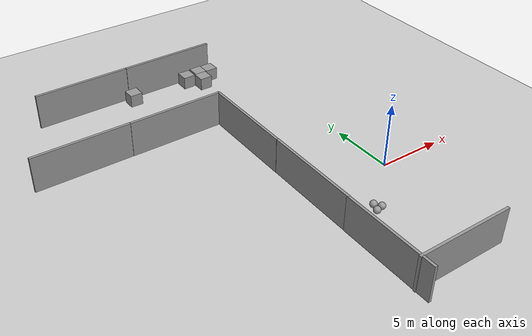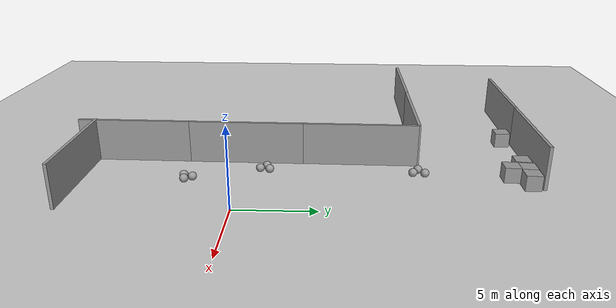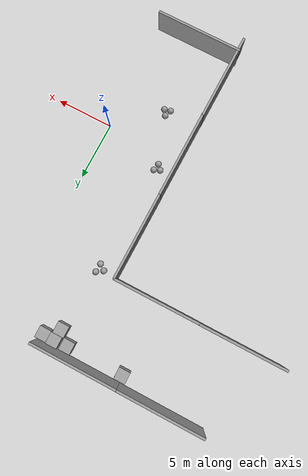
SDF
<sdf version="1.7">
 <world name="default">
  <model name="ground_plane">
   <static>1</static>
   <link name="link">
    <collision name="collision">
     <geometry><plane><normal>0 0 1</normal><size>100 100</size></plane></geometry>
     <surface><friction><ode><mu>100</mu><mu2>50</mu2></ode></friction></surface>
    </collision>
    <visual name="visual">
     <cast_shadows>0</cast_shadows>
     <geometry><plane><normal>0 0 1</normal><size>100 100</size></plane></geometry>
     <material>
      <script><uri>file://media/materials/scripts/gazebo.material</uri><name>Gazebo/Grey</name></script>
     </material>
    </visual>
   </link>
  </model>
  <model name="grey_wall">
   <static>1</static>
   <link name="link">
    <pose>0 0 1.4 0 -0 0</pose>
    <collision name="collision"><geometry><box><size>7.5 0.2 2.8</size></box></geometry></collision>
    <visual name="visual">
     <cast_shadows>0</cast_shadows>
     <geometry><box><size>7.5 0.2 2.8</size></box></geometry>
     <material>
      <script>
       <uri>model://grey_wall/materials/scripts</uri>
       <uri>model://grey_wall/materials/textures</uri>
       <name>vrc/grey_wall</name>
      </script>
     </material>
    </visual>
   </link>
   <pose>-6.78669 0.011997 0 0 0 -1.57834</pose>
  </model>
  <model name="grey_wall_clone_0">
   <static>1</static>
   <link name="link">
    <pose>0 0 1.4 0 -0 0</pose>
    <collision name="collision"><geometry><box><size>7.5 0.2 2.8</size></box></geometry></collision>
    <visual name="visual">
     <cast_shadows>0</cast_shadows>
     <geometry><box><size>7.5 0.2 2.8</size></box></geometry>
     <material>
      <script>
       <uri>model://grey_wall/materials/scripts</uri>
       <uri>model://grey_wall/materials/textures</uri>
       <name>vrc/grey_wall</name>
      </script>
     </material>
    </visual>
   </link>
   <pose>-6.74097 7.49673 0 0 0 -1.57834</pose>
  </model>
  <model name="grey_wall_clone_3">
   <static>1</static>
   <link name="link">
    <pose>0 0 1.4 0 -0 0</pose>
    <collision name="collision"><geometry><box><size>7.5 0.2 2.8</size></box></geometry></collision>
    <visual name="visual">
     <cast_shadows>0</cast_shadows>
     <geometry><box><size>7.5 0.2 2.8</size></box></geometry>
     <material>
      <script>
       <uri>model://grey_wall/materials/scripts</uri>
       <uri>model://grey_wall/materials/textures</uri>
       <name>vrc/grey_wall</name>
      </script>
     </material>
    </visual>
   </link>
   <pose>-10.4124 11.2518 -0 0 -0 0.002725</pose>
  </model>
  <model name="grey_wall_clone_3_clone_0">
   <static>1</static>
   <link name="link">
    <pose>0 0 1.4 0 -0 0</pose>
    <collision name="collision"><geometry><box><size>7.5 0.2 2.8</size></box></geometry></collision>
    <visual name="visual">
     <cast_shadows>0</cast_shadows>
     <geometry><box><size>7.5 0.2 2.8</size></box></geometry>
     <material>
      <script>
       <uri>model://grey_wall/materials/scripts</uri>
       <uri>model://grey_wall/materials/textures</uri>
       <name>vrc/grey_wall</name>
      </script>
     </material>
    </visual>
   </link>
   <pose>-7.05584 18.4768 -0 0 -0 0.002725</pose>
  </model>
  <model name="grey_wall_clone_3_clone_1">
   <static>1</static>
   <link name="link">
    <pose>0 0 1.4 0 -0 0</pose>
    <collision name="collision"><geometry><box><size>7.5 0.2 2.8</size></box></geometry></collision>
    <visual name="visual">
     <cast_shadows>0</cast_shadows>
     <geometry><box><size>7.5 0.2 2.8</size></box></geometry>
     <material>
      <script>
       <uri>model://grey_wall/materials/scripts</uri>
       <uri>model://grey_wall/materials/textures</uri>
       <name>vrc/grey_wall</name>
      </script>
     </material>
    </visual>
   </link>
   <pose>-14.5607 18.4686 -0 0 -0 0.002725</pose>
  </model>
  <model name="grey_wall_clone_3_clone_2">
   <static>1</static>
   <link name="link">
    <pose>0 0 1.4 0 -0 0</pose>
    <collision name="collision"><geometry><box><size>7.5 0.2 2.8</size></box></geometry></collision>
    <visual name="visual">
     <cast_shadows>0</cast_shadows>
     <geometry><box><size>7.5 0.2 2.8</size></box></geometry>
     <material>
      <script>
       <uri>model://grey_wall/materials/scripts</uri>
       <uri>model://grey_wall/materials/textures</uri>
       <name>vrc/grey_wall</name>
      </script>
     </material>
    </visual>
   </link>
   <pose>-17.8841 11.2437 -0 0 -0 0.002725</pose>
  </model>
  <model name="grey_wall_clone_3_clone_3">
   <static>1</static>
   <link name="link">
    <pose>0 0 1.4 0 -0 0</pose>
    <collision name="collision"><geometry><box><size>7.5 0.2 2.8</size></box></geometry></collision>
    <visual name="visual">
     <cast_shadows>0</cast_shadows>
     <geometry><box><size>7.5 0.2 2.8</size></box></geometry>
     <material>
      <script>
       <uri>model://grey_wall/materials/scripts</uri>
       <uri>model://grey_wall/materials/textures</uri>
       <name>vrc/grey_wall</name>
      </script>
     </material>
    </visual>
   </link>
   <pose>-3.29289 -9.9996 -0 0 -0 0.002725</pose>
  </model>
  <model name="grey_wall_clone_clone_0">
   <static>1</static>
   <link name="link">
    <pose>0 0 1.4 0 -0 0</pose>
    <collision name="collision"><geometry><box><size>7.5 0.2 2.8</size></box></geometry></collision>
    <visual name="visual">
     <cast_shadows>0</cast_shadows>
     <geometry><box><size>7.5 0.2 2.8</size></box></geometry>
     <material>
      <script>
       <uri>model://grey_wall/materials/scripts</uri>
       <uri>model://grey_wall/materials/textures</uri>
       <name>vrc/grey_wall</name>
      </script>
     </material>
    </visual>
   </link>
   <pose>-6.85771 -7.37169 0 0 0 -1.57834</pose>
  </model>
  <model name="unit_box_0">
   <pose>-4.64812 17.7846 0.499995 -1e-05 -0 -0.001318</pose>
   <link name="link">
    <inertial>
     <mass>1</mass>
     <inertia>
      <ixx>0.166667</ixx>
      <ixy>0</ixy>
      <ixz>0</ixz>
      <iyy>0.166667</iyy>
      <iyz>0</iyz>
      <izz>0.166667</izz>
     </inertia>
    </inertial>
    <collision name="collision"><geometry><box><size>1 1 1</size></box></geometry></collision>
    <visual name="visual">
     <geometry><box><size>1 1 1</size></box></geometry>
     <material>
      <script><name>Gazebo/Grey</name><uri>file://media/materials/scripts/gazebo.material</uri></script>
     </material>
    </visual>
   </link>
  </model>
  <model name="unit_box_0_clone">
   <pose>-3.64788 17.7466 0.499995 0 1e-05 -0.000769</pose>
   <link name="link">
    <inertial>
     <mass>1</mass>
     <inertia>
      <ixx>0.166667</ixx>
      <ixy>0</ixy>
      <ixz>0</ixz>
      <iyy>0.166667</iyy>
      <iyz>0</iyz>
      <izz>0.166667</izz>
     </inertia>
    </inertial>
    <collision name="collision"><geometry><box><size>1 1 1</size></box></geometry></collision>
    <visual name="visual">
     <geometry><box><size>1 1 1</size></box></geometry>
     <material>
      <script><name>Gazebo/Grey</name><uri>file://media/materials/scripts/gazebo.material</uri></script>
     </material>
    </visual>
   </link>
  </model>
  <model name="unit_box_0_clone_0">
   <pose>-4.75039 16.7845 0.499995 -0 1e-05 -0.001719</pose>
   <link name="link">
    <inertial>
     <mass>1</mass>
     <inertia>
      <ixx>0.166667</ixx>
      <ixy>0</ixy>
      <ixz>0</ixz>
      <iyy>0.166667</iyy>
      <iyz>0</iyz>
      <izz>0.166667</izz>
     </inertia>
    </inertial>
    <collision name="collision"><geometry><box><size>1 1 1</size></box></geometry></collision>
    <visual name="visual">
     <geometry><box><size>1 1 1</size></box></geometry>
     <material>
      <script><name>Gazebo/Grey</name><uri>file://media/materials/scripts/gazebo.material</uri></script>
     </material>
    </visual>
   </link>
  </model>
  <model name="unit_box_0_clone_1">
   <pose>-5.78902 17.7108 0.499995 -1e-05 -0 -0</pose>
   <link name="link">
    <inertial>
     <mass>1</mass>
     <inertia>
      <ixx>0.166667</ixx>
      <ixy>0</ixy>
      <ixz>0</ixz>
      <iyy>0.166667</iyy>
      <iyz>0</iyz>
      <izz>0.166667</izz>
     </inertia>
    </inertial>
    <collision name="collision"><geometry><box><size>1 1 1</size></box></geometry></collision>
    <visual name="visual">
     <geometry><box><size>1 1 1</size></box></geometry>
     <material>
      <script><name>Gazebo/Grey</name><uri>file://media/materials/scripts/gazebo.material</uri></script>
     </material>
    </visual>
   </link>
  </model>
  <model name="unit_box_0_clone_2">
   <pose>-10.7277 17.6537 0.499995 -1e-05 -0 -0</pose>
   <link name="link">
    <inertial>
     <mass>1</mass>
     <inertia>
      <ixx>0.166667</ixx>
      <ixy>0</ixy>
      <ixz>0</ixz>
      <iyy>0.166667</iyy>
      <iyz>0</iyz>
      <izz>0.166667</izz>
     </inertia>
    </inertial>
    <collision name="collision"><geometry><box><size>1 1 1</size></box></geometry></collision>
    <visual name="visual">
     <geometry><box><size>1 1 1</size></box></geometry>
     <material>
      <script><name>Gazebo/Grey</name><uri>file://media/materials/scripts/gazebo.material</uri></script>
     </material>
    </visual>
   </link>
  </model>
  <model name="unit_sphere_clone_1">
   <pose>-5.26566 1.09066 0.271614 0.016809 0.009105 0.012954</pose>
   <link name="link">
    <inertial>
     <mass>1</mass>
     <inertia><ixx>0.1</ixx><ixy>0</ixy><ixz>0</ixz><iyy>0.1</iyy><iyz>0</iyz><izz>0.1</izz></inertia>
    </inertial>
    <collision name="collision"><geometry><sphere><radius>0.271614</radius></sphere></geometry></collision>
    <visual name="visual">
     <geometry><sphere><radius>0.271614</radius></sphere></geometry>
     <material>
      <script><name>Gazebo/Grey</name><uri>file://media/materials/scripts/gazebo.material</uri></script>
     </material>
    </visual>
   </link>
  </model>
  <model name="unit_sphere_clone_2">
   <pose>-5.14134 1.70576 0.271614 -0.012056 0.014828 -0.01643</pose>
   <link name="link">
    <inertial>
     <mass>1</mass>
     <inertia><ixx>0.1</ixx><ixy>0</ixy><ixz>0</ixz><iyy>0.1</iyy><iyz>0</iyz><izz>0.1</izz></inertia>
    </inertial>
    <collision name="collision"><geometry><sphere><radius>0.271614</radius></sphere></geometry></collision>
    <visual name="visual">
     <geometry><sphere><radius>0.271614</radius></sphere></geometry>
     <material>
      <script><name>Gazebo/Grey</name><uri>file://media/materials/scripts/gazebo.material</uri></script>
     </material>
    </visual>
   </link>
  </model>
  <model name="unit_sphere_clone_3">
   <pose>-5.65013 1.48844 0.271614 -0.004272 -0.021995 -0.003409</pose>
   <link name="link">
    <inertial>
     <mass>1</mass>
     <inertia><ixx>0.1</ixx><ixy>0</ixy><ixz>0</ixz><iyy>0.1</iyy><iyz>0</iyz><izz>0.1</izz></inertia>
    </inertial>
    <collision name="collision"><geometry><sphere><radius>0.271614</radius></sphere></geometry></collision>
    <visual name="visual">
     <geometry><sphere><radius>0.271614</radius></sphere></geometry>
     <material>
      <script><name>Gazebo/Grey</name><uri>file://media/materials/scripts/gazebo.material</uri></script>
     </material>
    </visual>
   </link>
  </model>
  <model name="unit_sphere_clone_4">
   <pose>-3.47532 -3.44488 0.271614 0.021515 0.029464 -0.005341</pose>
   <link name="link">
    <inertial>
     <mass>1</mass>
     <inertia><ixx>0.1</ixx><ixy>0</ixy><ixz>0</ixz><iyy>0.1</iyy><iyz>0</iyz><izz>0.1</izz></inertia>
    </inertial>
    <collision name="collision"><geometry><sphere><radius>0.271614</radius></sphere></geometry></collision>
    <visual name="visual">
     <geometry><sphere><radius>0.271614</radius></sphere></geometry>
     <material>
      <script><name>Gazebo/Grey</name><uri>file://media/materials/scripts/gazebo.material</uri></script>
     </material>
    </visual>
   </link>
  </model>
  <model name="unit_sphere_clone_5">
   <pose>-3.79707 -2.98069 0.271614 -0.027595 -0.01828 0.000247</pose>
   <link name="link">
    <inertial>
     <mass>1</mass>
     <inertia><ixx>0.1</ixx><ixy>0</ixy><ixz>0</ixz><iyy>0.1</iyy><iyz>0</iyz><izz>0.1</izz></inertia>
    </inertial>
    <collision name="collision"><geometry><sphere><radius>0.271614</radius></sphere></geometry></collision>
    <visual name="visual">
     <geometry><sphere><radius>0.271614</radius></sphere></geometry>
     <material>
      <script><name>Gazebo/Grey</name><uri>file://media/materials/scripts/gazebo.material</uri></script>
     </material>
    </visual>
   </link>
  </model>
  <model name="unit_sphere_clone_6">
   <pose>-4.01368 -3.57225 0.271614 0.007571 -0.01701 -0.005624</pose>
   <link name="link">
    <inertial>
     <mass>1</mass>
     <inertia><ixx>0.1</ixx><ixy>0</ixy><ixz>0</ixz><iyy>0.1</iyy><iyz>0</iyz><izz>0.1</izz></inertia>
    </inertial>
    <collision name="collision"><geometry><sphere><radius>0.271614</radius></sphere></geometry></collision>
    <visual name="visual">
     <geometry><sphere><radius>0.271614</radius></sphere></geometry>
     <material>
      <script><name>Gazebo/Grey</name><uri>file://media/materials/scripts/gazebo.material</uri></script>
     </material>
    </visual>
   </link>
  </model>
  <model name="unit_sphere_clone_17">
   <pose>-4.91497 11.5184 0.271614 0 -0 0</pose>
   <link name="link">
    <inertial>
     <mass>1</mass>
     <inertia><ixx>0.1</ixx><ixy>0</ixy><ixz>0</ixz><iyy>0.1</iyy><iyz>0</iyz><izz>0.1</izz></inertia>
    </inertial>
    <collision name="collision"><geometry><sphere><radius>0.271614</radius></sphere></geometry></collision>
    <visual name="visual">
     <geometry><sphere><radius>0.271614</radius></sphere></geometry>
     <material>
      <script><name>Gazebo/Grey</name><uri>file://media/materials/scripts/gazebo.material</uri></script>
     </material>
    </visual>
   </link>
  </model>
  <model name="unit_sphere_clone_18">
   <pose>-5.46429 11.1443 0.271614 0 -0 0</pose>
   <link name="link">
    <inertial>
     <mass>1</mass>
     <inertia><ixx>0.1</ixx><ixy>0</ixy><ixz>0</ixz><iyy>0.1</iyy><iyz>0</iyz><izz>0.1</izz></inertia>
    </inertial>
    <collision name="collision"><geometry><sphere><radius>0.271614</radius></sphere></geometry></collision>
    <visual name="visual">
     <geometry><sphere><radius>0.271614</radius></sphere></geometry>
     <material>
      <script><name>Gazebo/Grey</name><uri>file://media/materials/scripts/gazebo.material</uri></script>
     </material>
    </visual>
   </link>
  </model>
  <model name="unit_sphere_clone_19">
   <pose>-4.95828 10.7716 0.271614 0 -0 0</pose>
   <link name="link">
    <inertial>
     <mass>1</mass>
     <inertia><ixx>0.1</ixx><ixy>0</ixy><ixz>0</ixz><iyy>0.1</iyy><iyz>0</iyz><izz>0.1</izz></inertia>
    </inertial>
    <collision name="collision"><geometry><sphere><radius>0.271614</radius></sphere></geometry></collision>
    <visual name="visual">
     <geometry><sphere><radius>0.271614</radius></sphere></geometry>
     <material>
      <script><name>Gazebo/Grey</name><uri>file://media/materials/scripts/gazebo.material</uri></script>
     </material>
    </visual>
   </link>
  </model>
 </world>
</sdf>
